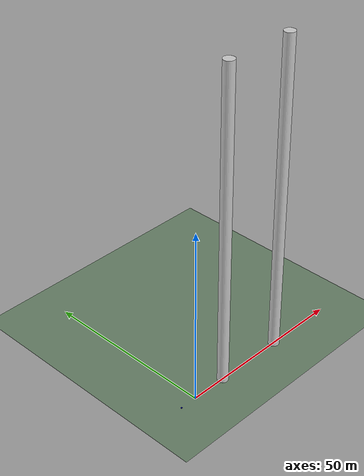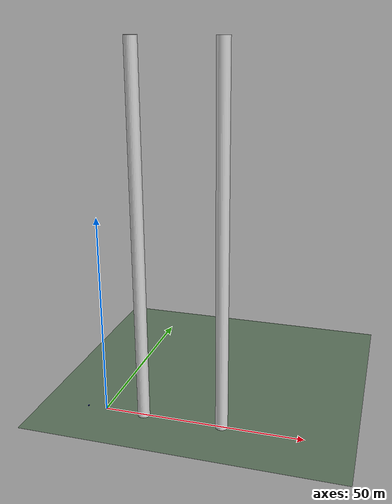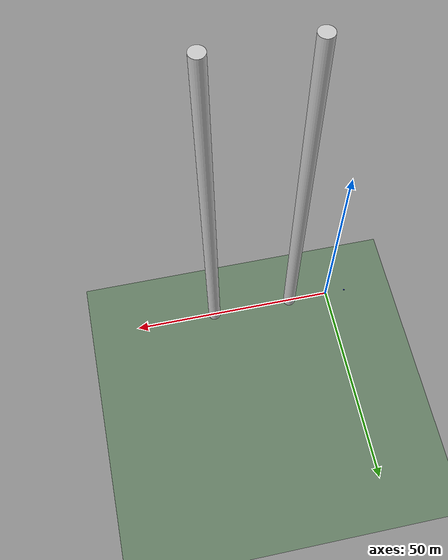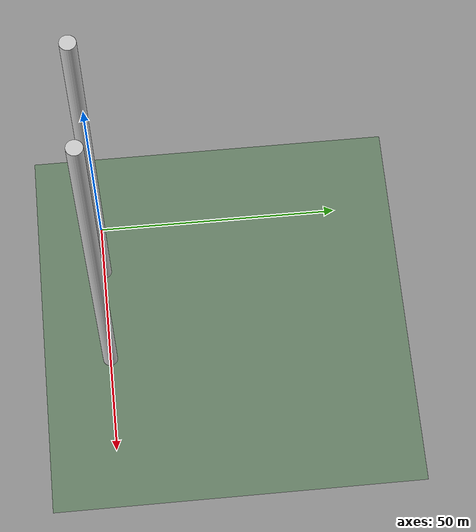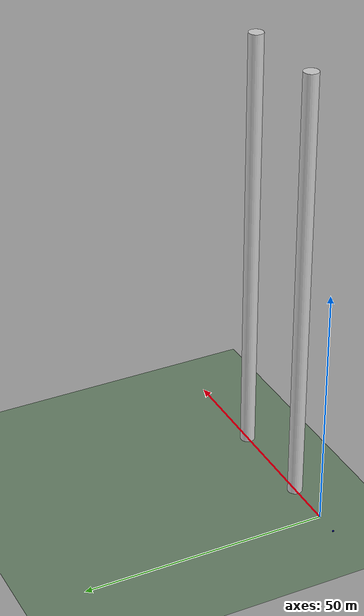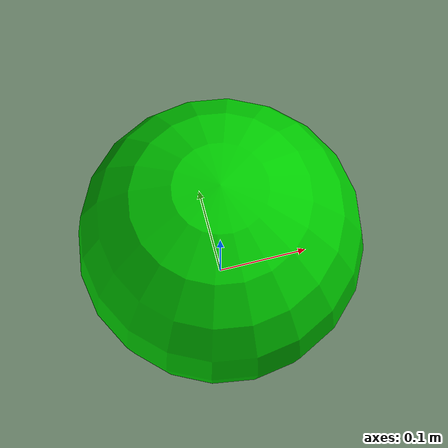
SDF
<?xml version="1.0" ?>
<sdf version="1.9">
  <world name="windfarm">

    <physics name="1ms" type="ignored">
      <max_step_size>0.001</max_step_size>
      <real_time_factor>1.0</real_time_factor>
    </physics>

    <plugin filename="gz-sim-physics-system"
            name="gz::sim::systems::Physics"/>
    <plugin filename="gz-sim-user-commands-system"
            name="gz::sim::systems::UserCommands"/>
    <plugin filename="gz-sim-scene-broadcaster-system"
            name="gz::sim::systems::SceneBroadcaster"/>
    <plugin filename="gz-sim-sensors-system"
            name="gz::sim::systems::Sensors">
      <render_engine>ogre2</render_engine>
    </plugin>
    <plugin filename="gz-sim-imu-system"
            name="gz::sim::systems::Imu"/>
    <plugin filename="gz-sim-magnetometer-system"
            name="gz::sim::systems::Magnetometer"/>
    <plugin filename="gz-sim-air-pressure-system"
            name="gz::sim::systems::AirPressure"/>

    <light type="directional" name="sun">
      <cast_shadows>true</cast_shadows>
      <pose>0 0 100 0 0 0</pose>
      <diffuse>1 1 1 1</diffuse>
      <specular>0.5 0.5 0.5 1</specular>
      <direction>-0.5 0.1 -0.9</direction>
    </light>

    <model name="ground_plane">
      <static>true</static>
      <link name="link">
        <collision name="collision">
          <geometry><plane><normal>0 0 1</normal><size>200 200</size></plane></geometry>
        </collision>
        <visual name="visual">
          <geometry><plane><normal>0 0 1</normal><size>200 200</size></plane></geometry>
          <material><ambient>0.4 0.5 0.4 1</ambient></material>
        </visual>
      </link>
    </model>

    <!-- Turbine tower WTG-01 -->
    <model name="turbine_01">
      <static>true</static>
      <pose>10 0 0 0 0 0</pose>
      <link name="tower">
        <collision name="c"><geometry><cylinder><radius>1.5</radius><length>90</length></cylinder></geometry></collision>
        <visual name="v">
          <pose>0 0 45 0 0 0</pose>
          <geometry><cylinder><radius>1.5</radius><length>90</length></cylinder></geometry>
          <material><ambient>0.8 0.8 0.8 1</ambient></material>
        </visual>
      </link>
    </model>

    <!-- Turbine tower WTG-02 -->
    <model name="turbine_02">
      <static>true</static>
      <pose>30 0 0 0 0 0</pose>
      <link name="tower">
        <collision name="c"><geometry><cylinder><radius>1.5</radius><length>90</length></cylinder></geometry></collision>
        <visual name="v">
          <pose>0 0 45 0 0 0</pose>
          <geometry><cylinder><radius>1.5</radius><length>90</length></cylinder></geometry>
          <material><ambient>0.8 0.8 0.8 1</ambient></material>
        </visual>
      </link>
    </model>

    <!-- UAV spawn point -->
    <model name="uav_start">
      <static>true</static>
      <pose>0 0 0.1 0 0 0</pose>
      <link name="link">
        <visual name="v">
          <geometry><sphere><radius>0.15</radius></sphere></geometry>
          <material><ambient>0 0.8 0 1</ambient></material>
        </visual>
      </link>
    </model>

    <!-- UGV spawn point -->
    <model name="ugv_start">
      <static>true</static>
      <pose>-5 0 0.1 0 0 0</pose>
      <link name="link">
        <visual name="v">
          <geometry><box><size>0.3 0.3 0.15</size></box></geometry>
          <material><ambient>0 0 0.8 1</ambient></material>
        </visual>
      </link>
    </model>

  </world>
</sdf>
